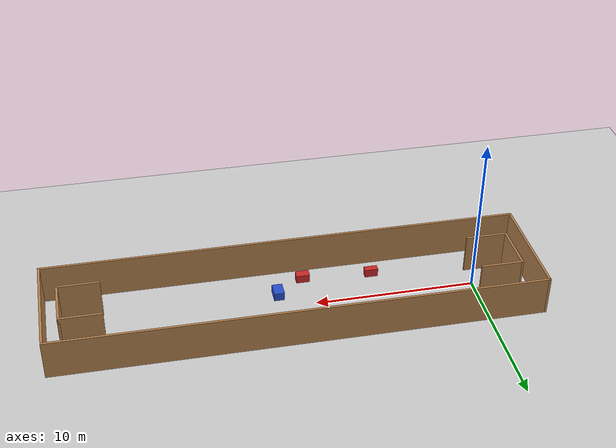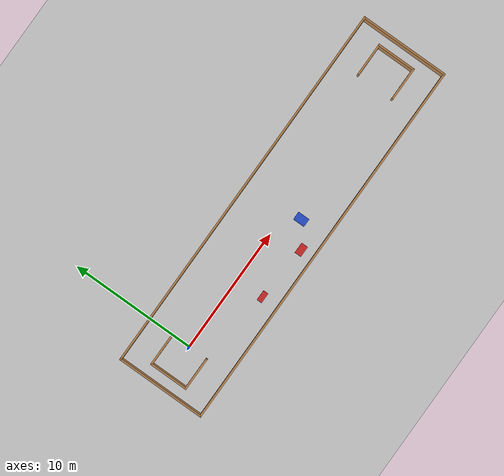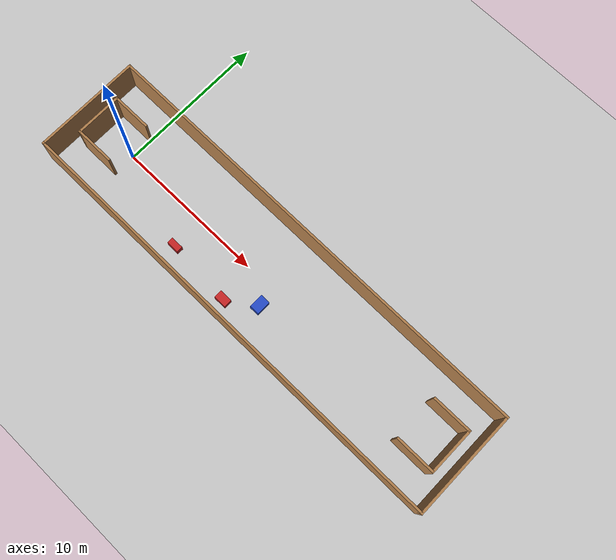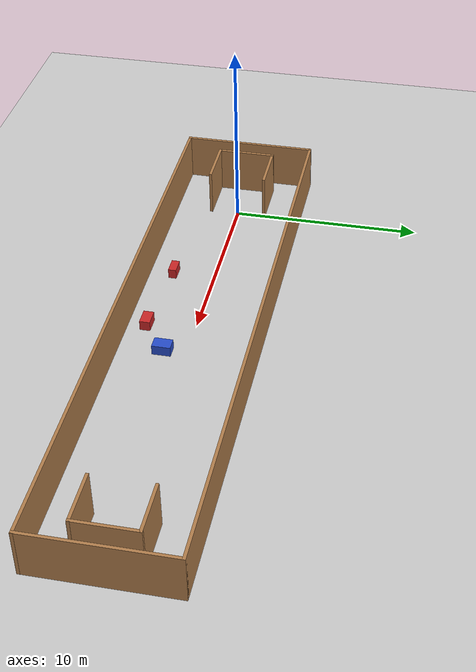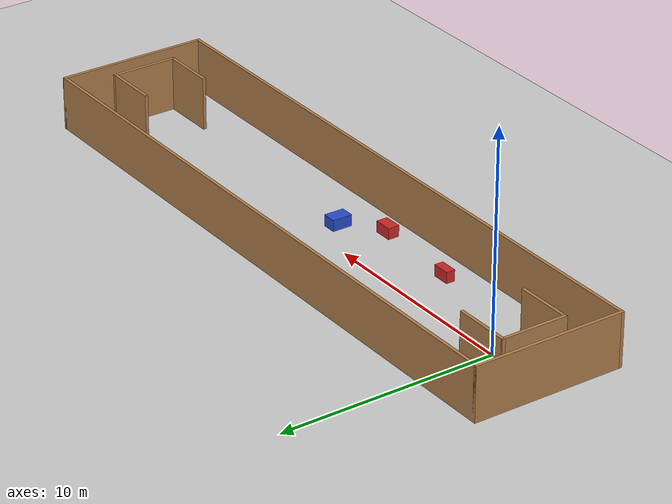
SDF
<sdf version="1.7">
 <world name="default">
  <light name="sun" type="directional">
   <pose>0 0 10 0 -0 0</pose>
   <diffuse>0.8 0.8 0.8 1</diffuse>
   <specular>0.2 0.2 0.2 1</specular>
   <attenuation>
    <range>1000</range>
    <constant>0.9</constant>
    <linear>0.01</linear>
    <quadratic>0.001</quadratic>
   </attenuation>
   <direction>-0.5 0.1 -0.9</direction>
   <spot><inner_angle>0</inner_angle><outer_angle>0</outer_angle><falloff>0</falloff></spot>
  </light>
  <model name="ground_plane">
   <static>1</static>
   <link name="link">
    <collision name="collision">
     <geometry><plane><normal>0 0 1</normal><size>100 100</size></plane></geometry>
     <surface>
      <contact><collide_bitmask>65535</collide_bitmask></contact>
      <friction><ode><mu>100</mu><mu2>50</mu2></ode></friction>
     </surface>
    </collision>
    <visual name="visual">
     <cast_shadows>0</cast_shadows>
     <geometry><plane><normal>0 0 1</normal><size>100 100</size></plane></geometry>
     <material>
      <script><uri>file://media/materials/scripts/gazebo.material</uri><name>Gazebo/Grey</name></script>
     </material>
    </visual>
   </link>
  </model>
  <gravity>0 0 -9.8</gravity>
  <magnetic_field>6e-06 2.3e-05 -4.2e-05</magnetic_field>
  <atmosphere type="adiabatic"/>
  <physics type="ode">
   <max_step_size>0.001</max_step_size>
   <real_time_factor>1</real_time_factor>
   <real_time_update_rate>1000</real_time_update_rate>
  </physics>
  <scene><ambient>0.4 0.4 0.4 1</ambient><background>0.7 0.7 0.7 1</background><shadows>1</shadows></scene>
  <spherical_coordinates>
   <surface_model>EARTH_WGS84</surface_model>
   <latitude_deg>0</latitude_deg>
   <longitude_deg>0</longitude_deg>
   <elevation>0</elevation>
   <heading_deg>0</heading_deg>
  </spherical_coordinates>
  <model name="my_base_walls">
   <link name="Wall_0">
    <collision name="Wall_0_Collision">
     <geometry><box><size>7.15 0.15 2.5</size></box></geometry>
     <pose>0 0 1.25 0 -0 0</pose>
    </collision>
    <visual name="Wall_0_Visual">
     <pose>0 0 1.25 0 -0 0</pose>
     <geometry><box><size>7.15 0.15 2.5</size></box></geometry>
     <material>
      <script><uri>file://media/materials/scripts/gazebo.material</uri><name>Gazebo/Wood</name></script>
      <ambient>1 1 1 1</ambient>
     </material>
     <meta><layer>0</layer></meta>
    </visual>
    <pose>-15 0 0 0 -0 1.5708</pose>
   </link>
   <link name="Wall_10">
    <collision name="Wall_10_Collision">
     <geometry><box><size>2.65 0.15 2.5</size></box></geometry>
     <pose>0 0 1.25 0 -0 0</pose>
    </collision>
    <visual name="Wall_10_Visual">
     <pose>0 0 1.25 0 -0 0</pose>
     <geometry><box><size>2.65 0.15 2.5</size></box></geometry>
     <material>
      <script><uri>file://media/materials/scripts/gazebo.material</uri><name>Gazebo/Wood</name></script>
      <ambient>1 1 1 1</ambient>
     </material>
     <meta><layer>0</layer></meta>
    </visual>
    <pose>-12.75 -1.5 0 0 -0 0</pose>
   </link>
   <link name="Wall_12">
    <collision name="Wall_12_Collision">
     <geometry><box><size>2.65 0.15 2.5</size></box></geometry>
     <pose>0 0 1.25 0 -0 0</pose>
    </collision>
    <visual name="Wall_12_Visual">
     <pose>0 0 1.25 0 -0 0</pose>
     <geometry><box><size>2.65 0.15 2.5</size></box></geometry>
     <material>
      <script><uri>file://media/materials/scripts/gazebo.material</uri><name>Gazebo/Wood</name></script>
      <ambient>1 1 1 1</ambient>
     </material>
     <meta><layer>0</layer></meta>
    </visual>
    <pose>-12.75 1.5 0 0 -0 0</pose>
   </link>
   <link name="Wall_14">
    <collision name="Wall_14_Collision">
     <geometry><box><size>3.15 0.15 2.5</size></box></geometry>
     <pose>0 0 1.25 0 -0 0</pose>
    </collision>
    <visual name="Wall_14_Visual">
     <pose>0 0 1.25 0 -0 0</pose>
     <geometry><box><size>3.15 0.15 2.5</size></box></geometry>
     <material>
      <script><uri>file://media/materials/scripts/gazebo.material</uri><name>Gazebo/Wood</name></script>
      <ambient>1 1 1 1</ambient>
     </material>
     <meta><layer>0</layer></meta>
    </visual>
    <pose>14 0 0 0 -0 -1.5708</pose>
   </link>
   <link name="Wall_15">
    <collision name="Wall_15_Collision">
     <geometry><box><size>2.65 0.15 2.5</size></box></geometry>
     <pose>0 0 1.25 0 -0 0</pose>
    </collision>
    <visual name="Wall_15_Visual">
     <pose>0 0 1.25 0 -0 0</pose>
     <geometry><box><size>2.65 0.15 2.5</size></box></geometry>
     <material>
      <script><uri>file://media/materials/scripts/gazebo.material</uri><name>Gazebo/Wood</name></script>
      <ambient>1 1 1 1</ambient>
     </material>
     <meta><layer>0</layer></meta>
    </visual>
    <pose>12.75 -1.5 0 0 -0 3.14159</pose>
   </link>
   <link name="Wall_17">
    <collision name="Wall_17_Collision">
     <geometry><box><size>2.65 0.15 2.5</size></box></geometry>
     <pose>0 0 1.25 0 -0 0</pose>
    </collision>
    <visual name="Wall_17_Visual">
     <pose>0 0 1.25 0 -0 0</pose>
     <geometry><box><size>2.65 0.15 2.5</size></box></geometry>
     <material>
      <script><uri>file://media/materials/scripts/gazebo.material</uri><name>Gazebo/Wood</name></script>
      <ambient>1 1 1 1</ambient>
     </material>
     <meta><layer>0</layer></meta>
    </visual>
    <pose>12.75 1.5 0 0 -0 3.14159</pose>
   </link>
   <link name="Wall_2">
    <collision name="Wall_2_Collision">
     <geometry><box><size>30.15 0.15 2.5</size></box></geometry>
     <pose>0 0 1.25 0 -0 0</pose>
    </collision>
    <visual name="Wall_2_Visual">
     <pose>0 0 1.25 0 -0 0</pose>
     <geometry><box><size>30.15 0.15 2.5</size></box></geometry>
     <material>
      <script><uri>file://media/materials/scripts/gazebo.material</uri><name>Gazebo/Wood</name></script>
      <ambient>1 1 1 1</ambient>
     </material>
     <meta><layer>0</layer></meta>
    </visual>
    <pose>-0 -3.5 0 0 -0 0</pose>
   </link>
   <link name="Wall_4">
    <collision name="Wall_4_Collision">
     <geometry><box><size>30.15 0.15 2.5</size></box></geometry>
     <pose>0 0 1.25 0 -0 0</pose>
    </collision>
    <visual name="Wall_4_Visual">
     <pose>0 0 1.25 0 -0 0</pose>
     <geometry><box><size>30.15 0.15 2.5</size></box></geometry>
     <material>
      <script><uri>file://media/materials/scripts/gazebo.material</uri><name>Gazebo/Wood</name></script>
      <ambient>1 1 1 1</ambient>
     </material>
     <meta><layer>0</layer></meta>
    </visual>
    <pose>-0 3.5 0 0 -0 0</pose>
   </link>
   <link name="Wall_6">
    <collision name="Wall_6_Collision">
     <geometry><box><size>7.15 0.15 2.5</size></box></geometry>
     <pose>0 0 1.25 0 -0 0</pose>
    </collision>
    <visual name="Wall_6_Visual">
     <pose>0 0 1.25 0 -0 0</pose>
     <geometry><box><size>7.15 0.15 2.5</size></box></geometry>
     <material>
      <script><uri>file://media/materials/scripts/gazebo.material</uri><name>Gazebo/Wood</name></script>
      <ambient>1 1 1 1</ambient>
     </material>
     <meta><layer>0</layer></meta>
    </visual>
    <pose>15 0 0 0 -0 -1.5708</pose>
   </link>
   <link name="Wall_9">
    <collision name="Wall_9_Collision">
     <geometry><box><size>3.15 0.15 2.5</size></box></geometry>
     <pose>0 0 1.25 0 -0 0</pose>
    </collision>
    <visual name="Wall_9_Visual">
     <pose>0 0 1.25 0 -0 0</pose>
     <geometry><box><size>3.15 0.15 2.5</size></box></geometry>
     <material>
      <script><uri>file://media/materials/scripts/gazebo.material</uri><name>Gazebo/Wood</name></script>
      <ambient>1 1 1 1</ambient>
     </material>
     <meta><layer>0</layer></meta>
    </visual>
    <pose>-14 0 0 0 -0 -1.5708</pose>
   </link>
   <static>1</static>
   <pose>11.5 0 0 0 -0 0</pose>
  </model>
  <model name="moving_box_1">
   <pose>10.379384191365737 -2.4814530356767355 0 0 0 0</pose>
   <link name="link">
    <collision name="collision">
     <geometry><box><size>0.847396045749718 0.5333176558041012 1</size></box></geometry>
     <surface><friction><ode><mu>0.1</mu><mu2>0.1</mu2></ode></friction></surface>
    </collision>
    <visual name="visual">
     <geometry><box><size>0.847396045749718 0.5333176558041012 1</size></box></geometry>
     <material>
      <script><uri>file://media/materials/scripts/gazebo.material</uri><name>Gazebo/Red</name></script>
     </material>
    </visual>
   </link>
   <plugin name="move_box_plugin_1" filename="/home/otonom/fgm_ws/devel/lib/libmove_box_plugin.so">
    <velocity>-0.17619561960512836 0.17889941062284864 0</velocity>
   </plugin>
  </model>
  <model name="moving_box_2">
   <pose>6.005626657564999 -2.176370426564411 0 0 0 0</pose>
   <link name="link">
    <collision name="collision">
     <geometry><box><size>0.8255507048948085 0.41217378976455427 1</size></box></geometry>
     <surface><friction><ode><mu>0.1</mu><mu2>0.1</mu2></ode></friction></surface>
    </collision>
    <visual name="visual">
     <geometry><box><size>0.8255507048948085 0.41217378976455427 1</size></box></geometry>
     <material>
      <script><uri>file://media/materials/scripts/gazebo.material</uri><name>Gazebo/Red</name></script>
     </material>
    </visual>
   </link>
   <plugin name="move_box_plugin_2" filename="/home/otonom/fgm_ws/devel/lib/libmove_box_plugin.so">
    <velocity>0.03506227217578348 0.21479837869588309 0</velocity>
   </plugin>
  </model>
  <model name="moving_box_3">
   <pose>12.170720794167988 -1.207091136965127 0 0 0 0</pose>
   <link name="link">
    <collision name="collision">
     <geometry><box><size>0.6504894061108462 0.9439852425085367 1</size></box></geometry>
     <surface><friction><ode><mu>0.1</mu><mu2>0.1</mu2></ode></friction></surface>
    </collision>
    <visual name="visual">
     <geometry><box><size>0.6504894061108462 0.9439852425085367 1</size></box></geometry>
     <material>
      <script><uri>file://media/materials/scripts/gazebo.material</uri><name>Gazebo/Blue</name></script>
     </material>
    </visual>
   </link>
   <plugin name="move_box_plugin_3" filename="/home/otonom/fgm_ws/devel/lib/libmove_box_plugin.so">
    <velocity>0 0 0</velocity>
   </plugin>
  </model>
 </world>
</sdf>
